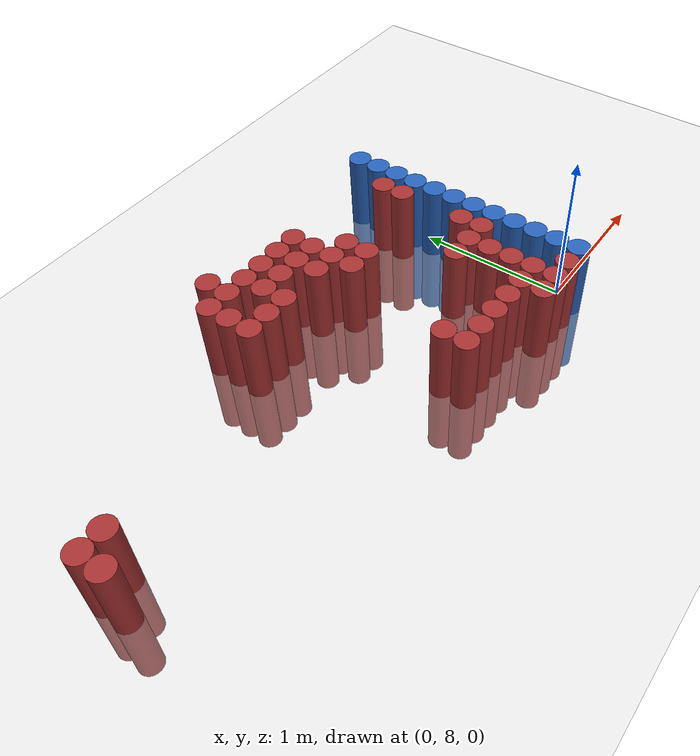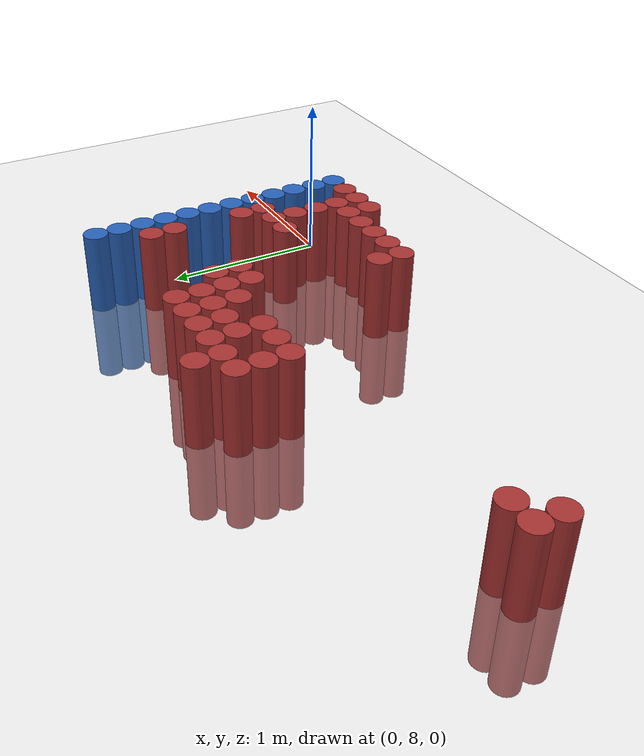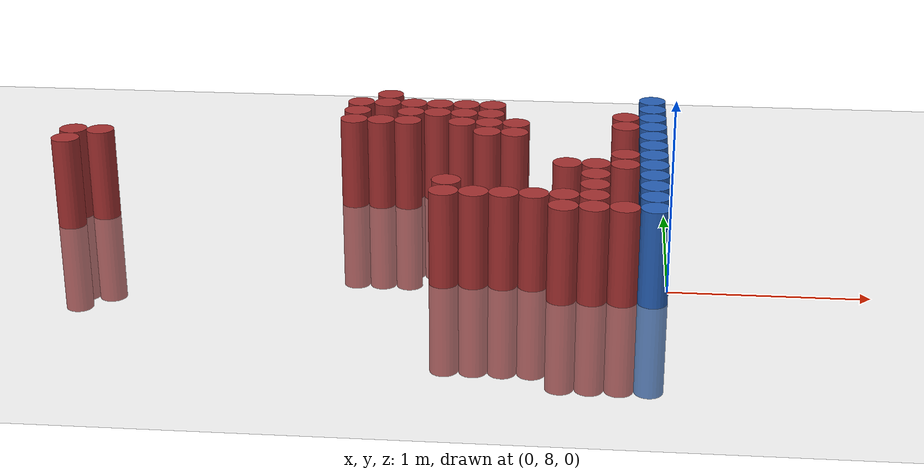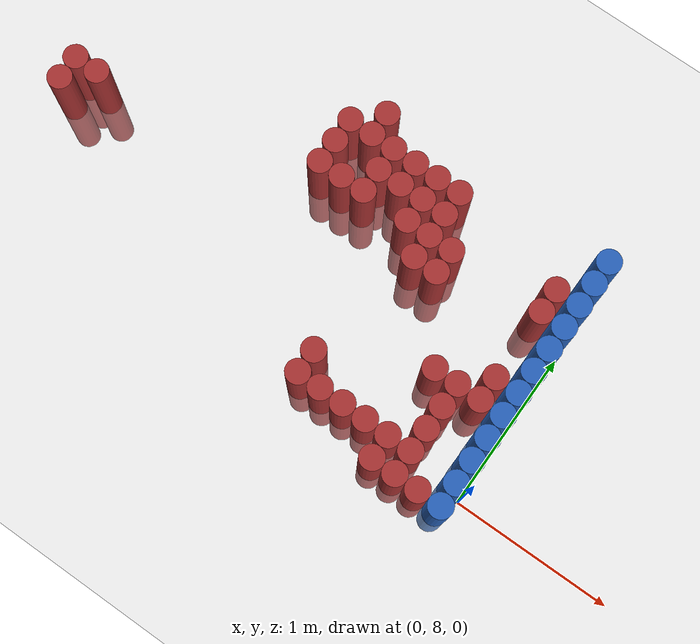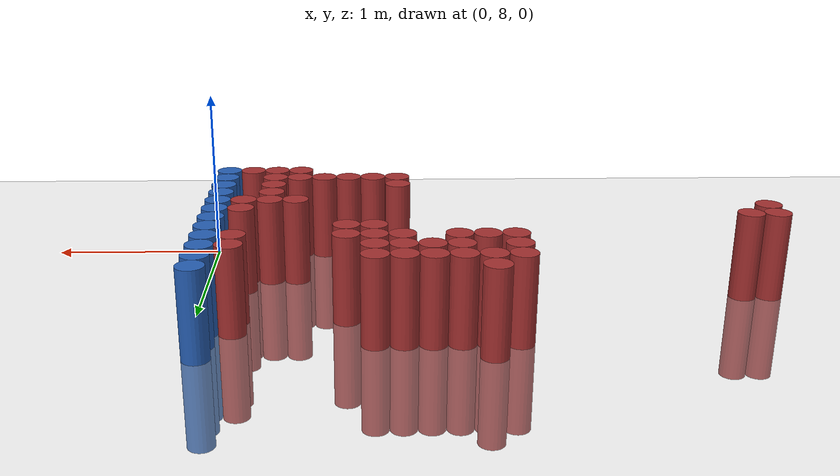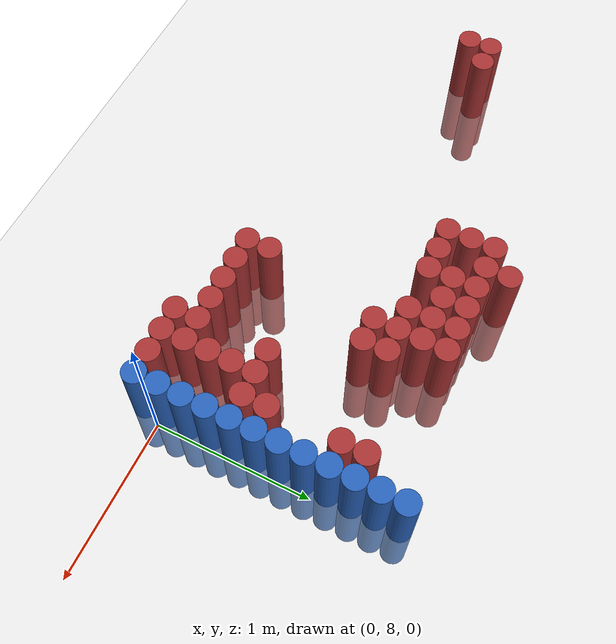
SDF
<sdf version="1.6">
 <world name="default">
  <model name="ground_plane">
   <static>1</static>
   <link name="link">
    <collision name="collision">
     <geometry><plane><normal>0 0 1</normal><size>100 100</size></plane></geometry>
     <surface><friction><ode><mu>100</mu><mu2>50</mu2></ode></friction></surface>
    </collision>
    <visual name="visual">
     <cast_shadows>0</cast_shadows>
     <geometry><plane><normal>0 0 1</normal><size>100 100</size></plane></geometry>
     <material>
      <script><uri>file://media/materials/scripts/gazebo.material</uri><name>Gazebo/Grey</name></script>
     </material>
    </visual>
   </link>
  </model>
  <model name="unit_cylinder_159">
   <static>1</static>
   <pose>-3.225000 8.625000 0.000000 0.000000 0.000000 0.000000</pose>
   <link name="link">
    <inertial>
     <mass>1</mass>
     <inertia><ixx>0.145833</ixx><ixy>0</ixy><ixz>0</ixz><iyy>0.145833</iyy><iyz>0</iyz><izz>0.125</izz></inertia>
    </inertial>
    <collision name="collision">
     <geometry><cylinder><radius>0.075000</radius><length>1</length></cylinder></geometry>
    </collision>
    <visual name="visual">
     <geometry><cylinder><radius>0.075000</radius><length>1</length></cylinder></geometry>
     <material>
      <ambient>0.648000 0.192000 0.192000 1</ambient>
      <diffuse>0.648000 0.192000 0.192000 1</diffuse>
     </material>
     <material>
      <script><name>Gazebo/Grey</name><uri>file://media/materials/scripts/gazebo.material</uri></script>
     </material>
    </visual>
   </link>
  </model>
  <model name="unit_cylinder_160">
   <static>1</static>
   <pose>-3.225000 8.775000 0.000000 0.000000 0.000000 0.000000</pose>
   <link name="link">
    <inertial>
     <mass>1</mass>
     <inertia><ixx>0.145833</ixx><ixy>0</ixy><ixz>0</ixz><iyy>0.145833</iyy><iyz>0</iyz><izz>0.125</izz></inertia>
    </inertial>
    <collision name="collision">
     <geometry><cylinder><radius>0.075000</radius><length>1</length></cylinder></geometry>
    </collision>
    <visual name="visual">
     <geometry><cylinder><radius>0.075000</radius><length>1</length></cylinder></geometry>
     <material>
      <ambient>0.648000 0.192000 0.192000 1</ambient>
      <diffuse>0.648000 0.192000 0.192000 1</diffuse>
     </material>
     <material>
      <script><name>Gazebo/Grey</name><uri>file://media/materials/scripts/gazebo.material</uri></script>
     </material>
    </visual>
   </link>
  </model>
  <model name="unit_cylinder_162">
   <static>1</static>
   <pose>-3.075000 8.775000 0.000000 0.000000 0.000000 0.000000</pose>
   <link name="link">
    <inertial>
     <mass>1</mass>
     <inertia><ixx>0.145833</ixx><ixy>0</ixy><ixz>0</ixz><iyy>0.145833</iyy><iyz>0</iyz><izz>0.125</izz></inertia>
    </inertial>
    <collision name="collision">
     <geometry><cylinder><radius>0.075000</radius><length>1</length></cylinder></geometry>
    </collision>
    <visual name="visual">
     <geometry><cylinder><radius>0.075000</radius><length>1</length></cylinder></geometry>
     <material>
      <ambient>0.648000 0.192000 0.192000 1</ambient>
      <diffuse>0.648000 0.192000 0.192000 1</diffuse>
     </material>
     <material>
      <script><name>Gazebo/Grey</name><uri>file://media/materials/scripts/gazebo.material</uri></script>
     </material>
    </visual>
   </link>
  </model>
  <model name="unit_cylinder_181">
   <static>1</static>
   <pose>-1.725000 9.075000 0.000000 0.000000 0.000000 0.000000</pose>
   <link name="link">
    <inertial>
     <mass>1</mass>
     <inertia><ixx>0.145833</ixx><ixy>0</ixy><ixz>0</ixz><iyy>0.145833</iyy><iyz>0</iyz><izz>0.125</izz></inertia>
    </inertial>
    <collision name="collision">
     <geometry><cylinder><radius>0.075000</radius><length>1</length></cylinder></geometry>
    </collision>
    <visual name="visual">
     <geometry><cylinder><radius>0.075000</radius><length>1</length></cylinder></geometry>
     <material>
      <ambient>0.648000 0.192000 0.192000 1</ambient>
      <diffuse>0.648000 0.192000 0.192000 1</diffuse>
     </material>
     <material>
      <script><name>Gazebo/Grey</name><uri>file://media/materials/scripts/gazebo.material</uri></script>
     </material>
    </visual>
   </link>
  </model>
  <model name="unit_cylinder_182">
   <static>1</static>
   <pose>-1.725000 9.225000 0.000000 0.000000 0.000000 0.000000</pose>
   <link name="link">
    <inertial>
     <mass>1</mass>
     <inertia><ixx>0.145833</ixx><ixy>0</ixy><ixz>0</ixz><iyy>0.145833</iyy><iyz>0</iyz><izz>0.125</izz></inertia>
    </inertial>
    <collision name="collision">
     <geometry><cylinder><radius>0.075000</radius><length>1</length></cylinder></geometry>
    </collision>
    <visual name="visual">
     <geometry><cylinder><radius>0.075000</radius><length>1</length></cylinder></geometry>
     <material>
      <ambient>0.648000 0.192000 0.192000 1</ambient>
      <diffuse>0.648000 0.192000 0.192000 1</diffuse>
     </material>
     <material>
      <script><name>Gazebo/Grey</name><uri>file://media/materials/scripts/gazebo.material</uri></script>
     </material>
    </visual>
   </link>
  </model>
  <model name="unit_cylinder_183">
   <static>1</static>
   <pose>-1.725000 9.375000 0.000000 0.000000 0.000000 0.000000</pose>
   <link name="link">
    <inertial>
     <mass>1</mass>
     <inertia><ixx>0.145833</ixx><ixy>0</ixy><ixz>0</ixz><iyy>0.145833</iyy><iyz>0</iyz><izz>0.125</izz></inertia>
    </inertial>
    <collision name="collision">
     <geometry><cylinder><radius>0.075000</radius><length>1</length></cylinder></geometry>
    </collision>
    <visual name="visual">
     <geometry><cylinder><radius>0.075000</radius><length>1</length></cylinder></geometry>
     <material>
      <ambient>0.648000 0.192000 0.192000 1</ambient>
      <diffuse>0.648000 0.192000 0.192000 1</diffuse>
     </material>
     <material>
      <script><name>Gazebo/Grey</name><uri>file://media/materials/scripts/gazebo.material</uri></script>
     </material>
    </visual>
   </link>
  </model>
  <model name="unit_cylinder_184">
   <static>1</static>
   <pose>-1.575000 9.075000 0.000000 0.000000 0.000000 0.000000</pose>
   <link name="link">
    <inertial>
     <mass>1</mass>
     <inertia><ixx>0.145833</ixx><ixy>0</ixy><ixz>0</ixz><iyy>0.145833</iyy><iyz>0</iyz><izz>0.125</izz></inertia>
    </inertial>
    <collision name="collision">
     <geometry><cylinder><radius>0.075000</radius><length>1</length></cylinder></geometry>
    </collision>
    <visual name="visual">
     <geometry><cylinder><radius>0.075000</radius><length>1</length></cylinder></geometry>
     <material>
      <ambient>0.648000 0.192000 0.192000 1</ambient>
      <diffuse>0.648000 0.192000 0.192000 1</diffuse>
     </material>
     <material>
      <script><name>Gazebo/Grey</name><uri>file://media/materials/scripts/gazebo.material</uri></script>
     </material>
    </visual>
   </link>
  </model>
  <model name="unit_cylinder_185">
   <static>1</static>
   <pose>-1.575000 9.375000 0.000000 0.000000 0.000000 0.000000</pose>
   <link name="link">
    <inertial>
     <mass>1</mass>
     <inertia><ixx>0.145833</ixx><ixy>0</ixy><ixz>0</ixz><iyy>0.145833</iyy><iyz>0</iyz><izz>0.125</izz></inertia>
    </inertial>
    <collision name="collision">
     <geometry><cylinder><radius>0.075000</radius><length>1</length></cylinder></geometry>
    </collision>
    <visual name="visual">
     <geometry><cylinder><radius>0.075000</radius><length>1</length></cylinder></geometry>
     <material>
      <ambient>0.648000 0.192000 0.192000 1</ambient>
      <diffuse>0.648000 0.192000 0.192000 1</diffuse>
     </material>
     <material>
      <script><name>Gazebo/Grey</name><uri>file://media/materials/scripts/gazebo.material</uri></script>
     </material>
    </visual>
   </link>
  </model>
  <model name="unit_cylinder_186">
   <static>1</static>
   <pose>-1.575000 9.525000 0.000000 0.000000 0.000000 0.000000</pose>
   <link name="link">
    <inertial>
     <mass>1</mass>
     <inertia><ixx>0.145833</ixx><ixy>0</ixy><ixz>0</ixz><iyy>0.145833</iyy><iyz>0</iyz><izz>0.125</izz></inertia>
    </inertial>
    <collision name="collision">
     <geometry><cylinder><radius>0.075000</radius><length>1</length></cylinder></geometry>
    </collision>
    <visual name="visual">
     <geometry><cylinder><radius>0.075000</radius><length>1</length></cylinder></geometry>
     <material>
      <ambient>0.648000 0.192000 0.192000 1</ambient>
      <diffuse>0.648000 0.192000 0.192000 1</diffuse>
     </material>
     <material>
      <script><name>Gazebo/Grey</name><uri>file://media/materials/scripts/gazebo.material</uri></script>
     </material>
    </visual>
   </link>
  </model>
  <model name="unit_cylinder_187">
   <static>1</static>
   <pose>-1.425000 9.075000 0.000000 0.000000 0.000000 0.000000</pose>
   <link name="link">
    <inertial>
     <mass>1</mass>
     <inertia><ixx>0.145833</ixx><ixy>0</ixy><ixz>0</ixz><iyy>0.145833</iyy><iyz>0</iyz><izz>0.125</izz></inertia>
    </inertial>
    <collision name="collision">
     <geometry><cylinder><radius>0.075000</radius><length>1</length></cylinder></geometry>
    </collision>
    <visual name="visual">
     <geometry><cylinder><radius>0.075000</radius><length>1</length></cylinder></geometry>
     <material>
      <ambient>0.648000 0.192000 0.192000 1</ambient>
      <diffuse>0.648000 0.192000 0.192000 1</diffuse>
     </material>
     <material>
      <script><name>Gazebo/Grey</name><uri>file://media/materials/scripts/gazebo.material</uri></script>
     </material>
    </visual>
   </link>
  </model>
  <model name="unit_cylinder_188">
   <static>1</static>
   <pose>-1.425000 9.225000 0.000000 0.000000 0.000000 0.000000</pose>
   <link name="link">
    <inertial>
     <mass>1</mass>
     <inertia><ixx>0.145833</ixx><ixy>0</ixy><ixz>0</ixz><iyy>0.145833</iyy><iyz>0</iyz><izz>0.125</izz></inertia>
    </inertial>
    <collision name="collision">
     <geometry><cylinder><radius>0.075000</radius><length>1</length></cylinder></geometry>
    </collision>
    <visual name="visual">
     <geometry><cylinder><radius>0.075000</radius><length>1</length></cylinder></geometry>
     <material>
      <ambient>0.648000 0.192000 0.192000 1</ambient>
      <diffuse>0.648000 0.192000 0.192000 1</diffuse>
     </material>
     <material>
      <script><name>Gazebo/Grey</name><uri>file://media/materials/scripts/gazebo.material</uri></script>
     </material>
    </visual>
   </link>
  </model>
  <model name="unit_cylinder_189">
   <static>1</static>
   <pose>-1.425000 9.375000 0.000000 0.000000 0.000000 0.000000</pose>
   <link name="link">
    <inertial>
     <mass>1</mass>
     <inertia><ixx>0.145833</ixx><ixy>0</ixy><ixz>0</ixz><iyy>0.145833</iyy><iyz>0</iyz><izz>0.125</izz></inertia>
    </inertial>
    <collision name="collision">
     <geometry><cylinder><radius>0.075000</radius><length>1</length></cylinder></geometry>
    </collision>
    <visual name="visual">
     <geometry><cylinder><radius>0.075000</radius><length>1</length></cylinder></geometry>
     <material>
      <ambient>0.648000 0.192000 0.192000 1</ambient>
      <diffuse>0.648000 0.192000 0.192000 1</diffuse>
     </material>
     <material>
      <script><name>Gazebo/Grey</name><uri>file://media/materials/scripts/gazebo.material</uri></script>
     </material>
    </visual>
   </link>
  </model>
  <model name="unit_cylinder_190">
   <static>1</static>
   <pose>-1.275000 9.225000 0.000000 0.000000 0.000000 0.000000</pose>
   <link name="link">
    <inertial>
     <mass>1</mass>
     <inertia><ixx>0.145833</ixx><ixy>0</ixy><ixz>0</ixz><iyy>0.145833</iyy><iyz>0</iyz><izz>0.125</izz></inertia>
    </inertial>
    <collision name="collision">
     <geometry><cylinder><radius>0.075000</radius><length>1</length></cylinder></geometry>
    </collision>
    <visual name="visual">
     <geometry><cylinder><radius>0.075000</radius><length>1</length></cylinder></geometry>
     <material>
      <ambient>0.648000 0.192000 0.192000 1</ambient>
      <diffuse>0.648000 0.192000 0.192000 1</diffuse>
     </material>
     <material>
      <script><name>Gazebo/Grey</name><uri>file://media/materials/scripts/gazebo.material</uri></script>
     </material>
    </visual>
   </link>
  </model>
  <model name="unit_cylinder_191">
   <static>1</static>
   <pose>-1.275000 9.375000 0.000000 0.000000 0.000000 0.000000</pose>
   <link name="link">
    <inertial>
     <mass>1</mass>
     <inertia><ixx>0.145833</ixx><ixy>0</ixy><ixz>0</ixz><iyy>0.145833</iyy><iyz>0</iyz><izz>0.125</izz></inertia>
    </inertial>
    <collision name="collision">
     <geometry><cylinder><radius>0.075000</radius><length>1</length></cylinder></geometry>
    </collision>
    <visual name="visual">
     <geometry><cylinder><radius>0.075000</radius><length>1</length></cylinder></geometry>
     <material>
      <ambient>0.648000 0.192000 0.192000 1</ambient>
      <diffuse>0.648000 0.192000 0.192000 1</diffuse>
     </material>
     <material>
      <script><name>Gazebo/Grey</name><uri>file://media/materials/scripts/gazebo.material</uri></script>
     </material>
    </visual>
   </link>
  </model>
  <model name="unit_cylinder_192">
   <static>1</static>
   <pose>-1.125000 8.025000 0.000000 0.000000 0.000000 0.000000</pose>
   <link name="link">
    <inertial>
     <mass>1</mass>
     <inertia><ixx>0.145833</ixx><ixy>0</ixy><ixz>0</ixz><iyy>0.145833</iyy><iyz>0</iyz><izz>0.125</izz></inertia>
    </inertial>
    <collision name="collision">
     <geometry><cylinder><radius>0.075000</radius><length>1</length></cylinder></geometry>
    </collision>
    <visual name="visual">
     <geometry><cylinder><radius>0.075000</radius><length>1</length></cylinder></geometry>
     <material>
      <ambient>0.648000 0.192000 0.192000 1</ambient>
      <diffuse>0.648000 0.192000 0.192000 1</diffuse>
     </material>
     <material>
      <script><name>Gazebo/Grey</name><uri>file://media/materials/scripts/gazebo.material</uri></script>
     </material>
    </visual>
   </link>
  </model>
  <model name="unit_cylinder_193">
   <static>1</static>
   <pose>-1.125000 8.175000 0.000000 0.000000 0.000000 0.000000</pose>
   <link name="link">
    <inertial>
     <mass>1</mass>
     <inertia><ixx>0.145833</ixx><ixy>0</ixy><ixz>0</ixz><iyy>0.145833</iyy><iyz>0</iyz><izz>0.125</izz></inertia>
    </inertial>
    <collision name="collision">
     <geometry><cylinder><radius>0.075000</radius><length>1</length></cylinder></geometry>
    </collision>
    <visual name="visual">
     <geometry><cylinder><radius>0.075000</radius><length>1</length></cylinder></geometry>
     <material>
      <ambient>0.648000 0.192000 0.192000 1</ambient>
      <diffuse>0.648000 0.192000 0.192000 1</diffuse>
     </material>
     <material>
      <script><name>Gazebo/Grey</name><uri>file://media/materials/scripts/gazebo.material</uri></script>
     </material>
    </visual>
   </link>
  </model>
  <model name="unit_cylinder_194">
   <static>1</static>
   <pose>-1.125000 9.075000 0.000000 0.000000 0.000000 0.000000</pose>
   <link name="link">
    <inertial>
     <mass>1</mass>
     <inertia><ixx>0.145833</ixx><ixy>0</ixy><ixz>0</ixz><iyy>0.145833</iyy><iyz>0</iyz><izz>0.125</izz></inertia>
    </inertial>
    <collision name="collision">
     <geometry><cylinder><radius>0.075000</radius><length>1</length></cylinder></geometry>
    </collision>
    <visual name="visual">
     <geometry><cylinder><radius>0.075000</radius><length>1</length></cylinder></geometry>
     <material>
      <ambient>0.648000 0.192000 0.192000 1</ambient>
      <diffuse>0.648000 0.192000 0.192000 1</diffuse>
     </material>
     <material>
      <script><name>Gazebo/Grey</name><uri>file://media/materials/scripts/gazebo.material</uri></script>
     </material>
    </visual>
   </link>
  </model>
  <model name="unit_cylinder_195">
   <static>1</static>
   <pose>-1.125000 9.225000 0.000000 0.000000 0.000000 0.000000</pose>
   <link name="link">
    <inertial>
     <mass>1</mass>
     <inertia><ixx>0.145833</ixx><ixy>0</ixy><ixz>0</ixz><iyy>0.145833</iyy><iyz>0</iyz><izz>0.125</izz></inertia>
    </inertial>
    <collision name="collision">
     <geometry><cylinder><radius>0.075000</radius><length>1</length></cylinder></geometry>
    </collision>
    <visual name="visual">
     <geometry><cylinder><radius>0.075000</radius><length>1</length></cylinder></geometry>
     <material>
      <ambient>0.648000 0.192000 0.192000 1</ambient>
      <diffuse>0.648000 0.192000 0.192000 1</diffuse>
     </material>
     <material>
      <script><name>Gazebo/Grey</name><uri>file://media/materials/scripts/gazebo.material</uri></script>
     </material>
    </visual>
   </link>
  </model>
  <model name="unit_cylinder_196">
   <static>1</static>
   <pose>-1.125000 9.375000 0.000000 0.000000 0.000000 0.000000</pose>
   <link name="link">
    <inertial>
     <mass>1</mass>
     <inertia><ixx>0.145833</ixx><ixy>0</ixy><ixz>0</ixz><iyy>0.145833</iyy><iyz>0</iyz><izz>0.125</izz></inertia>
    </inertial>
    <collision name="collision">
     <geometry><cylinder><radius>0.075000</radius><length>1</length></cylinder></geometry>
    </collision>
    <visual name="visual">
     <geometry><cylinder><radius>0.075000</radius><length>1</length></cylinder></geometry>
     <material>
      <ambient>0.648000 0.192000 0.192000 1</ambient>
      <diffuse>0.648000 0.192000 0.192000 1</diffuse>
     </material>
     <material>
      <script><name>Gazebo/Grey</name><uri>file://media/materials/scripts/gazebo.material</uri></script>
     </material>
    </visual>
   </link>
  </model>
  <model name="unit_cylinder_198">
   <static>1</static>
   <pose>-0.975000 8.025000 0.000000 0.000000 0.000000 0.000000</pose>
   <link name="link">
    <inertial>
     <mass>1</mass>
     <inertia><ixx>0.145833</ixx><ixy>0</ixy><ixz>0</ixz><iyy>0.145833</iyy><iyz>0</iyz><izz>0.125</izz></inertia>
    </inertial>
    <collision name="collision">
     <geometry><cylinder><radius>0.075000</radius><length>1</length></cylinder></geometry>
    </collision>
    <visual name="visual">
     <geometry><cylinder><radius>0.075000</radius><length>1</length></cylinder></geometry>
     <material>
      <ambient>0.648000 0.192000 0.192000 1</ambient>
      <diffuse>0.648000 0.192000 0.192000 1</diffuse>
     </material>
     <material>
      <script><name>Gazebo/Grey</name><uri>file://media/materials/scripts/gazebo.material</uri></script>
     </material>
    </visual>
   </link>
  </model>
  <model name="unit_cylinder_199">
   <static>1</static>
   <pose>-0.975000 8.925000 0.000000 0.000000 0.000000 0.000000</pose>
   <link name="link">
    <inertial>
     <mass>1</mass>
     <inertia><ixx>0.145833</ixx><ixy>0</ixy><ixz>0</ixz><iyy>0.145833</iyy><iyz>0</iyz><izz>0.125</izz></inertia>
    </inertial>
    <collision name="collision">
     <geometry><cylinder><radius>0.075000</radius><length>1</length></cylinder></geometry>
    </collision>
    <visual name="visual">
     <geometry><cylinder><radius>0.075000</radius><length>1</length></cylinder></geometry>
     <material>
      <ambient>0.648000 0.192000 0.192000 1</ambient>
      <diffuse>0.648000 0.192000 0.192000 1</diffuse>
     </material>
     <material>
      <script><name>Gazebo/Grey</name><uri>file://media/materials/scripts/gazebo.material</uri></script>
     </material>
    </visual>
   </link>
  </model>
  <model name="unit_cylinder_200">
   <static>1</static>
   <pose>-0.975000 9.075000 0.000000 0.000000 0.000000 0.000000</pose>
   <link name="link">
    <inertial>
     <mass>1</mass>
     <inertia><ixx>0.145833</ixx><ixy>0</ixy><ixz>0</ixz><iyy>0.145833</iyy><iyz>0</iyz><izz>0.125</izz></inertia>
    </inertial>
    <collision name="collision">
     <geometry><cylinder><radius>0.075000</radius><length>1</length></cylinder></geometry>
    </collision>
    <visual name="visual">
     <geometry><cylinder><radius>0.075000</radius><length>1</length></cylinder></geometry>
     <material>
      <ambient>0.648000 0.192000 0.192000 1</ambient>
      <diffuse>0.648000 0.192000 0.192000 1</diffuse>
     </material>
     <material>
      <script><name>Gazebo/Grey</name><uri>file://media/materials/scripts/gazebo.material</uri></script>
     </material>
    </visual>
   </link>
  </model>
  <model name="unit_cylinder_201">
   <static>1</static>
   <pose>-0.975000 9.225000 0.000000 0.000000 0.000000 0.000000</pose>
   <link name="link">
    <inertial>
     <mass>1</mass>
     <inertia><ixx>0.145833</ixx><ixy>0</ixy><ixz>0</ixz><iyy>0.145833</iyy><iyz>0</iyz><izz>0.125</izz></inertia>
    </inertial>
    <collision name="collision">
     <geometry><cylinder><radius>0.075000</radius><length>1</length></cylinder></geometry>
    </collision>
    <visual name="visual">
     <geometry><cylinder><radius>0.075000</radius><length>1</length></cylinder></geometry>
     <material>
      <ambient>0.648000 0.192000 0.192000 1</ambient>
      <diffuse>0.648000 0.192000 0.192000 1</diffuse>
     </material>
     <material>
      <script><name>Gazebo/Grey</name><uri>file://media/materials/scripts/gazebo.material</uri></script>
     </material>
    </visual>
   </link>
  </model>
  <model name="unit_cylinder_202">
   <static>1</static>
   <pose>-0.975000 9.375000 0.000000 0.000000 0.000000 0.000000</pose>
   <link name="link">
    <inertial>
     <mass>1</mass>
     <inertia><ixx>0.145833</ixx><ixy>0</ixy><ixz>0</ixz><iyy>0.145833</iyy><iyz>0</iyz><izz>0.125</izz></inertia>
    </inertial>
    <collision name="collision">
     <geometry><cylinder><radius>0.075000</radius><length>1</length></cylinder></geometry>
    </collision>
    <visual name="visual">
     <geometry><cylinder><radius>0.075000</radius><length>1</length></cylinder></geometry>
     <material>
      <ambient>0.648000 0.192000 0.192000 1</ambient>
      <diffuse>0.648000 0.192000 0.192000 1</diffuse>
     </material>
     <material>
      <script><name>Gazebo/Grey</name><uri>file://media/materials/scripts/gazebo.material</uri></script>
     </material>
    </visual>
   </link>
  </model>
  <model name="unit_cylinder_204">
   <static>1</static>
   <pose>-0.825000 8.025000 0.000000 0.000000 0.000000 0.000000</pose>
   <link name="link">
    <inertial>
     <mass>1</mass>
     <inertia><ixx>0.145833</ixx><ixy>0</ixy><ixz>0</ixz><iyy>0.145833</iyy><iyz>0</iyz><izz>0.125</izz></inertia>
    </inertial>
    <collision name="collision">
     <geometry><cylinder><radius>0.075000</radius><length>1</length></cylinder></geometry>
    </collision>
    <visual name="visual">
     <geometry><cylinder><radius>0.075000</radius><length>1</length></cylinder></geometry>
     <material>
      <ambient>0.648000 0.192000 0.192000 1</ambient>
      <diffuse>0.648000 0.192000 0.192000 1</diffuse>
     </material>
     <material>
      <script><name>Gazebo/Grey</name><uri>file://media/materials/scripts/gazebo.material</uri></script>
     </material>
    </visual>
   </link>
  </model>
  <model name="unit_cylinder_205">
   <static>1</static>
   <pose>-0.825000 8.925000 0.000000 0.000000 0.000000 0.000000</pose>
   <link name="link">
    <inertial>
     <mass>1</mass>
     <inertia><ixx>0.145833</ixx><ixy>0</ixy><ixz>0</ixz><iyy>0.145833</iyy><iyz>0</iyz><izz>0.125</izz></inertia>
    </inertial>
    <collision name="collision">
     <geometry><cylinder><radius>0.075000</radius><length>1</length></cylinder></geometry>
    </collision>
    <visual name="visual">
     <geometry><cylinder><radius>0.075000</radius><length>1</length></cylinder></geometry>
     <material>
      <ambient>0.648000 0.192000 0.192000 1</ambient>
      <diffuse>0.648000 0.192000 0.192000 1</diffuse>
     </material>
     <material>
      <script><name>Gazebo/Grey</name><uri>file://media/materials/scripts/gazebo.material</uri></script>
     </material>
    </visual>
   </link>
  </model>
  <model name="unit_cylinder_206">
   <static>1</static>
   <pose>-0.825000 9.075000 0.000000 0.000000 0.000000 0.000000</pose>
   <link name="link">
    <inertial>
     <mass>1</mass>
     <inertia><ixx>0.145833</ixx><ixy>0</ixy><ixz>0</ixz><iyy>0.145833</iyy><iyz>0</iyz><izz>0.125</izz></inertia>
    </inertial>
    <collision name="collision">
     <geometry><cylinder><radius>0.075000</radius><length>1</length></cylinder></geometry>
    </collision>
    <visual name="visual">
     <geometry><cylinder><radius>0.075000</radius><length>1</length></cylinder></geometry>
     <material>
      <ambient>0.648000 0.192000 0.192000 1</ambient>
      <diffuse>0.648000 0.192000 0.192000 1</diffuse>
     </material>
     <material>
      <script><name>Gazebo/Grey</name><uri>file://media/materials/scripts/gazebo.material</uri></script>
     </material>
    </visual>
   </link>
  </model>
  <model name="unit_cylinder_208">
   <static>1</static>
   <pose>-0.675000 8.025000 0.000000 0.000000 0.000000 0.000000</pose>
   <link name="link">
    <inertial>
     <mass>1</mass>
     <inertia><ixx>0.145833</ixx><ixy>0</ixy><ixz>0</ixz><iyy>0.145833</iyy><iyz>0</iyz><izz>0.125</izz></inertia>
    </inertial>
    <collision name="collision">
     <geometry><cylinder><radius>0.075000</radius><length>1</length></cylinder></geometry>
    </collision>
    <visual name="visual">
     <geometry><cylinder><radius>0.075000</radius><length>1</length></cylinder></geometry>
     <material>
      <ambient>0.648000 0.192000 0.192000 1</ambient>
      <diffuse>0.648000 0.192000 0.192000 1</diffuse>
     </material>
     <material>
      <script><name>Gazebo/Grey</name><uri>file://media/materials/scripts/gazebo.material</uri></script>
     </material>
    </visual>
   </link>
  </model>
  <model name="unit_cylinder_211">
   <static>1</static>
   <pose>-0.525000 7.875000 0.000000 0.000000 0.000000 0.000000</pose>
   <link name="link">
    <inertial>
     <mass>1</mass>
     <inertia><ixx>0.145833</ixx><ixy>0</ixy><ixz>0</ixz><iyy>0.145833</iyy><iyz>0</iyz><izz>0.125</izz></inertia>
    </inertial>
    <collision name="collision">
     <geometry><cylinder><radius>0.075000</radius><length>1</length></cylinder></geometry>
    </collision>
    <visual name="visual">
     <geometry><cylinder><radius>0.075000</radius><length>1</length></cylinder></geometry>
     <material>
      <ambient>0.648000 0.192000 0.192000 1</ambient>
      <diffuse>0.648000 0.192000 0.192000 1</diffuse>
     </material>
     <material>
      <script><name>Gazebo/Grey</name><uri>file://media/materials/scripts/gazebo.material</uri></script>
     </material>
    </visual>
   </link>
  </model>
  <model name="unit_cylinder_212">
   <static>1</static>
   <pose>-0.525000 8.025000 0.000000 0.000000 0.000000 0.000000</pose>
   <link name="link">
    <inertial>
     <mass>1</mass>
     <inertia><ixx>0.145833</ixx><ixy>0</ixy><ixz>0</ixz><iyy>0.145833</iyy><iyz>0</iyz><izz>0.125</izz></inertia>
    </inertial>
    <collision name="collision">
     <geometry><cylinder><radius>0.075000</radius><length>1</length></cylinder></geometry>
    </collision>
    <visual name="visual">
     <geometry><cylinder><radius>0.075000</radius><length>1</length></cylinder></geometry>
     <material>
      <ambient>0.648000 0.192000 0.192000 1</ambient>
      <diffuse>0.648000 0.192000 0.192000 1</diffuse>
     </material>
     <material>
      <script><name>Gazebo/Grey</name><uri>file://media/materials/scripts/gazebo.material</uri></script>
     </material>
    </visual>
   </link>
  </model>
  <model name="unit_cylinder_213">
   <static>1</static>
   <pose>-0.525000 8.475000 0.000000 0.000000 0.000000 0.000000</pose>
   <link name="link">
    <inertial>
     <mass>1</mass>
     <inertia><ixx>0.145833</ixx><ixy>0</ixy><ixz>0</ixz><iyy>0.145833</iyy><iyz>0</iyz><izz>0.125</izz></inertia>
    </inertial>
    <collision name="collision">
     <geometry><cylinder><radius>0.075000</radius><length>1</length></cylinder></geometry>
    </collision>
    <visual name="visual">
     <geometry><cylinder><radius>0.075000</radius><length>1</length></cylinder></geometry>
     <material>
      <ambient>0.648000 0.192000 0.192000 1</ambient>
      <diffuse>0.648000 0.192000 0.192000 1</diffuse>
     </material>
     <material>
      <script><name>Gazebo/Grey</name><uri>file://media/materials/scripts/gazebo.material</uri></script>
     </material>
    </visual>
   </link>
  </model>
  <model name="unit_cylinder_218">
   <static>1</static>
   <pose>-0.375000 7.875000 0.000000 0.000000 0.000000 0.000000</pose>
   <link name="link">
    <inertial>
     <mass>1</mass>
     <inertia><ixx>0.145833</ixx><ixy>0</ixy><ixz>0</ixz><iyy>0.145833</iyy><iyz>0</iyz><izz>0.125</izz></inertia>
    </inertial>
    <collision name="collision">
     <geometry><cylinder><radius>0.075000</radius><length>1</length></cylinder></geometry>
    </collision>
    <visual name="visual">
     <geometry><cylinder><radius>0.075000</radius><length>1</length></cylinder></geometry>
     <material>
      <ambient>0.648000 0.192000 0.192000 1</ambient>
      <diffuse>0.648000 0.192000 0.192000 1</diffuse>
     </material>
     <material>
      <script><name>Gazebo/Grey</name><uri>file://media/materials/scripts/gazebo.material</uri></script>
     </material>
    </visual>
   </link>
  </model>
  <model name="unit_cylinder_219">
   <static>1</static>
   <pose>-0.375000 8.025000 0.000000 0.000000 0.000000 0.000000</pose>
   <link name="link">
    <inertial>
     <mass>1</mass>
     <inertia><ixx>0.145833</ixx><ixy>0</ixy><ixz>0</ixz><iyy>0.145833</iyy><iyz>0</iyz><izz>0.125</izz></inertia>
    </inertial>
    <collision name="collision">
     <geometry><cylinder><radius>0.075000</radius><length>1</length></cylinder></geometry>
    </collision>
    <visual name="visual">
     <geometry><cylinder><radius>0.075000</radius><length>1</length></cylinder></geometry>
     <material>
      <ambient>0.648000 0.192000 0.192000 1</ambient>
      <diffuse>0.648000 0.192000 0.192000 1</diffuse>
     </material>
     <material>
      <script><name>Gazebo/Grey</name><uri>file://media/materials/scripts/gazebo.material</uri></script>
     </material>
    </visual>
   </link>
  </model>
  <model name="unit_cylinder_220">
   <static>1</static>
   <pose>-0.375000 8.175000 0.000000 0.000000 0.000000 0.000000</pose>
   <link name="link">
    <inertial>
     <mass>1</mass>
     <inertia><ixx>0.145833</ixx><ixy>0</ixy><ixz>0</ixz><iyy>0.145833</iyy><iyz>0</iyz><izz>0.125</izz></inertia>
    </inertial>
    <collision name="collision">
     <geometry><cylinder><radius>0.075000</radius><length>1</length></cylinder></geometry>
    </collision>
    <visual name="visual">
     <geometry><cylinder><radius>0.075000</radius><length>1</length></cylinder></geometry>
     <material>
      <ambient>0.648000 0.192000 0.192000 1</ambient>
      <diffuse>0.648000 0.192000 0.192000 1</diffuse>
     </material>
     <material>
      <script><name>Gazebo/Grey</name><uri>file://media/materials/scripts/gazebo.material</uri></script>
     </material>
    </visual>
   </link>
  </model>
  <model name="unit_cylinder_221">
   <static>1</static>
   <pose>-0.375000 8.325000 0.000000 0.000000 0.000000 0.000000</pose>
   <link name="link">
    <inertial>
     <mass>1</mass>
     <inertia><ixx>0.145833</ixx><ixy>0</ixy><ixz>0</ixz><iyy>0.145833</iyy><iyz>0</iyz><izz>0.125</izz></inertia>
    </inertial>
    <collision name="collision">
     <geometry><cylinder><radius>0.075000</radius><length>1</length></cylinder></geometry>
    </collision>
    <visual name="visual">
     <geometry><cylinder><radius>0.075000</radius><length>1</length></cylinder></geometry>
     <material>
      <ambient>0.648000 0.192000 0.192000 1</ambient>
      <diffuse>0.648000 0.192000 0.192000 1</diffuse>
     </material>
     <material>
      <script><name>Gazebo/Grey</name><uri>file://media/materials/scripts/gazebo.material</uri></script>
     </material>
    </visual>
   </link>
  </model>
  <model name="unit_cylinder_222">
   <static>1</static>
   <pose>-0.375000 8.475000 0.000000 0.000000 0.000000 0.000000</pose>
   <link name="link">
    <inertial>
     <mass>1</mass>
     <inertia><ixx>0.145833</ixx><ixy>0</ixy><ixz>0</ixz><iyy>0.145833</iyy><iyz>0</iyz><izz>0.125</izz></inertia>
    </inertial>
    <collision name="collision">
     <geometry><cylinder><radius>0.075000</radius><length>1</length></cylinder></geometry>
    </collision>
    <visual name="visual">
     <geometry><cylinder><radius>0.075000</radius><length>1</length></cylinder></geometry>
     <material>
      <ambient>0.648000 0.192000 0.192000 1</ambient>
      <diffuse>0.648000 0.192000 0.192000 1</diffuse>
     </material>
     <material>
      <script><name>Gazebo/Grey</name><uri>file://media/materials/scripts/gazebo.material</uri></script>
     </material>
    </visual>
   </link>
  </model>
  <model name="unit_cylinder_230">
   <static>1</static>
   <pose>-0.225000 7.875000 0.000000 0.000000 0.000000 0.000000</pose>
   <link name="link">
    <inertial>
     <mass>1</mass>
     <inertia><ixx>0.145833</ixx><ixy>0</ixy><ixz>0</ixz><iyy>0.145833</iyy><iyz>0</iyz><izz>0.125</izz></inertia>
    </inertial>
    <collision name="collision">
     <geometry><cylinder><radius>0.075000</radius><length>1</length></cylinder></geometry>
    </collision>
    <visual name="visual">
     <geometry><cylinder><radius>0.075000</radius><length>1</length></cylinder></geometry>
     <material>
      <ambient>0.648000 0.192000 0.192000 1</ambient>
      <diffuse>0.648000 0.192000 0.192000 1</diffuse>
     </material>
     <material>
      <script><name>Gazebo/Grey</name><uri>file://media/materials/scripts/gazebo.material</uri></script>
     </material>
    </visual>
   </link>
  </model>
  <model name="unit_cylinder_231">
   <static>1</static>
   <pose>-0.225000 8.475000 0.000000 0.000000 0.000000 0.000000</pose>
   <link name="link">
    <inertial>
     <mass>1</mass>
     <inertia><ixx>0.145833</ixx><ixy>0</ixy><ixz>0</ixz><iyy>0.145833</iyy><iyz>0</iyz><izz>0.125</izz></inertia>
    </inertial>
    <collision name="collision">
     <geometry><cylinder><radius>0.075000</radius><length>1</length></cylinder></geometry>
    </collision>
    <visual name="visual">
     <geometry><cylinder><radius>0.075000</radius><length>1</length></cylinder></geometry>
     <material>
      <ambient>0.648000 0.192000 0.192000 1</ambient>
      <diffuse>0.648000 0.192000 0.192000 1</diffuse>
     </material>
     <material>
      <script><name>Gazebo/Grey</name><uri>file://media/materials/scripts/gazebo.material</uri></script>
     </material>
    </visual>
   </link>
  </model>
  <model name="unit_cylinder_232">
   <static>1</static>
   <pose>-0.225000 8.625000 0.000000 0.000000 0.000000 0.000000</pose>
   <link name="link">
    <inertial>
     <mass>1</mass>
     <inertia><ixx>0.145833</ixx><ixy>0</ixy><ixz>0</ixz><iyy>0.145833</iyy><iyz>0</iyz><izz>0.125</izz></inertia>
    </inertial>
    <collision name="collision">
     <geometry><cylinder><radius>0.075000</radius><length>1</length></cylinder></geometry>
    </collision>
    <visual name="visual">
     <geometry><cylinder><radius>0.075000</radius><length>1</length></cylinder></geometry>
     <material>
      <ambient>0.648000 0.192000 0.192000 1</ambient>
      <diffuse>0.648000 0.192000 0.192000 1</diffuse>
     </material>
     <material>
      <script><name>Gazebo/Grey</name><uri>file://media/materials/scripts/gazebo.material</uri></script>
     </material>
    </visual>
   </link>
  </model>
  <model name="unit_cylinder_233">
   <static>1</static>
   <pose>-0.225000 9.075000 0.000000 0.000000 0.000000 0.000000</pose>
   <link name="link">
    <inertial>
     <mass>1</mass>
     <inertia><ixx>0.145833</ixx><ixy>0</ixy><ixz>0</ixz><iyy>0.145833</iyy><iyz>0</iyz><izz>0.125</izz></inertia>
    </inertial>
    <collision name="collision">
     <geometry><cylinder><radius>0.075000</radius><length>1</length></cylinder></geometry>
    </collision>
    <visual name="visual">
     <geometry><cylinder><radius>0.075000</radius><length>1</length></cylinder></geometry>
     <material>
      <ambient>0.648000 0.192000 0.192000 1</ambient>
      <diffuse>0.648000 0.192000 0.192000 1</diffuse>
     </material>
     <material>
      <script><name>Gazebo/Grey</name><uri>file://media/materials/scripts/gazebo.material</uri></script>
     </material>
    </visual>
   </link>
  </model>
  <model name="unit_cylinder_234">
   <static>1</static>
   <pose>-0.225000 9.225000 0.000000 0.000000 0.000000 0.000000</pose>
   <link name="link">
    <inertial>
     <mass>1</mass>
     <inertia><ixx>0.145833</ixx><ixy>0</ixy><ixz>0</ixz><iyy>0.145833</iyy><iyz>0</iyz><izz>0.125</izz></inertia>
    </inertial>
    <collision name="collision">
     <geometry><cylinder><radius>0.075000</radius><length>1</length></cylinder></geometry>
    </collision>
    <visual name="visual">
     <geometry><cylinder><radius>0.075000</radius><length>1</length></cylinder></geometry>
     <material>
      <ambient>0.648000 0.192000 0.192000 1</ambient>
      <diffuse>0.648000 0.192000 0.192000 1</diffuse>
     </material>
     <material>
      <script><name>Gazebo/Grey</name><uri>file://media/materials/scripts/gazebo.material</uri></script>
     </material>
    </visual>
   </link>
  </model>
  <model name="unit_cylinder_253">
   <static>1</static>
   <pose>-0.075000 7.875000 0.000000 0.000000 0.000000 0.000000</pose>
   <link name="link">
    <inertial>
     <mass>1</mass>
     <inertia><ixx>0.145833</ixx><ixy>0</ixy><ixz>0</ixz><iyy>0.145833</iyy><iyz>0</iyz><izz>0.125</izz></inertia>
    </inertial>
    <collision name="collision">
     <geometry><cylinder><radius>0.075000</radius><length>1</length></cylinder></geometry>
    </collision>
    <visual name="visual">
     <geometry><cylinder><radius>0.075000</radius><length>1</length></cylinder></geometry>
     <material>
      <ambient>0.152000 0.379000 0.720000 1</ambient>
      <diffuse>0.152000 0.379000 0.720000 1</diffuse>
     </material>
     <material>
      <script><name>Gazebo/Grey</name><uri>file://media/materials/scripts/gazebo.material</uri></script>
     </material>
    </visual>
   </link>
  </model>
  <model name="unit_cylinder_254">
   <static>1</static>
   <pose>-0.075000 8.025000 0.000000 0.000000 0.000000 0.000000</pose>
   <link name="link">
    <inertial>
     <mass>1</mass>
     <inertia><ixx>0.145833</ixx><ixy>0</ixy><ixz>0</ixz><iyy>0.145833</iyy><iyz>0</iyz><izz>0.125</izz></inertia>
    </inertial>
    <collision name="collision">
     <geometry><cylinder><radius>0.075000</radius><length>1</length></cylinder></geometry>
    </collision>
    <visual name="visual">
     <geometry><cylinder><radius>0.075000</radius><length>1</length></cylinder></geometry>
     <material>
      <ambient>0.152000 0.379000 0.720000 1</ambient>
      <diffuse>0.152000 0.379000 0.720000 1</diffuse>
     </material>
     <material>
      <script><name>Gazebo/Grey</name><uri>file://media/materials/scripts/gazebo.material</uri></script>
     </material>
    </visual>
   </link>
  </model>
  <model name="unit_cylinder_255">
   <static>1</static>
   <pose>-0.075000 8.175000 0.000000 0.000000 0.000000 0.000000</pose>
   <link name="link">
    <inertial>
     <mass>1</mass>
     <inertia><ixx>0.145833</ixx><ixy>0</ixy><ixz>0</ixz><iyy>0.145833</iyy><iyz>0</iyz><izz>0.125</izz></inertia>
    </inertial>
    <collision name="collision">
     <geometry><cylinder><radius>0.075000</radius><length>1</length></cylinder></geometry>
    </collision>
    <visual name="visual">
     <geometry><cylinder><radius>0.075000</radius><length>1</length></cylinder></geometry>
     <material>
      <ambient>0.152000 0.379000 0.720000 1</ambient>
      <diffuse>0.152000 0.379000 0.720000 1</diffuse>
     </material>
     <material>
      <script><name>Gazebo/Grey</name><uri>file://media/materials/scripts/gazebo.material</uri></script>
     </material>
    </visual>
   </link>
  </model>
  <model name="unit_cylinder_256">
   <static>1</static>
   <pose>-0.075000 8.325000 0.000000 0.000000 0.000000 0.000000</pose>
   <link name="link">
    <inertial>
     <mass>1</mass>
     <inertia><ixx>0.145833</ixx><ixy>0</ixy><ixz>0</ixz><iyy>0.145833</iyy><iyz>0</iyz><izz>0.125</izz></inertia>
    </inertial>
    <collision name="collision">
     <geometry><cylinder><radius>0.075000</radius><length>1</length></cylinder></geometry>
    </collision>
    <visual name="visual">
     <geometry><cylinder><radius>0.075000</radius><length>1</length></cylinder></geometry>
     <material>
      <ambient>0.152000 0.379000 0.720000 1</ambient>
      <diffuse>0.152000 0.379000 0.720000 1</diffuse>
     </material>
     <material>
      <script><name>Gazebo/Grey</name><uri>file://media/materials/scripts/gazebo.material</uri></script>
     </material>
    </visual>
   </link>
  </model>
  <model name="unit_cylinder_257">
   <static>1</static>
   <pose>-0.075000 8.475000 0.000000 0.000000 0.000000 0.000000</pose>
   <link name="link">
    <inertial>
     <mass>1</mass>
     <inertia><ixx>0.145833</ixx><ixy>0</ixy><ixz>0</ixz><iyy>0.145833</iyy><iyz>0</iyz><izz>0.125</izz></inertia>
    </inertial>
    <collision name="collision">
     <geometry><cylinder><radius>0.075000</radius><length>1</length></cylinder></geometry>
    </collision>
    <visual name="visual">
     <geometry><cylinder><radius>0.075000</radius><length>1</length></cylinder></geometry>
     <material>
      <ambient>0.152000 0.379000 0.720000 1</ambient>
      <diffuse>0.152000 0.379000 0.720000 1</diffuse>
     </material>
     <material>
      <script><name>Gazebo/Grey</name><uri>file://media/materials/scripts/gazebo.material</uri></script>
     </material>
    </visual>
   </link>
  </model>
  <model name="unit_cylinder_258">
   <static>1</static>
   <pose>-0.075000 8.625000 0.000000 0.000000 0.000000 0.000000</pose>
   <link name="link">
    <inertial>
     <mass>1</mass>
     <inertia><ixx>0.145833</ixx><ixy>0</ixy><ixz>0</ixz><iyy>0.145833</iyy><iyz>0</iyz><izz>0.125</izz></inertia>
    </inertial>
    <collision name="collision">
     <geometry><cylinder><radius>0.075000</radius><length>1</length></cylinder></geometry>
    </collision>
    <visual name="visual">
     <geometry><cylinder><radius>0.075000</radius><length>1</length></cylinder></geometry>
     <material>
      <ambient>0.152000 0.379000 0.720000 1</ambient>
      <diffuse>0.152000 0.379000 0.720000 1</diffuse>
     </material>
     <material>
      <script><name>Gazebo/Grey</name><uri>file://media/materials/scripts/gazebo.material</uri></script>
     </material>
    </visual>
   </link>
  </model>
  <model name="unit_cylinder_259">
   <static>1</static>
   <pose>-0.075000 8.775000 0.000000 0.000000 0.000000 0.000000</pose>
   <link name="link">
    <inertial>
     <mass>1</mass>
     <inertia><ixx>0.145833</ixx><ixy>0</ixy><ixz>0</ixz><iyy>0.145833</iyy><iyz>0</iyz><izz>0.125</izz></inertia>
    </inertial>
    <collision name="collision">
     <geometry><cylinder><radius>0.075000</radius><length>1</length></cylinder></geometry>
    </collision>
    <visual name="visual">
     <geometry><cylinder><radius>0.075000</radius><length>1</length></cylinder></geometry>
     <material>
      <ambient>0.152000 0.379000 0.720000 1</ambient>
      <diffuse>0.152000 0.379000 0.720000 1</diffuse>
     </material>
     <material>
      <script><name>Gazebo/Grey</name><uri>file://media/materials/scripts/gazebo.material</uri></script>
     </material>
    </visual>
   </link>
  </model>
  <model name="unit_cylinder_260">
   <static>1</static>
   <pose>-0.075000 8.925000 0.000000 0.000000 0.000000 0.000000</pose>
   <link name="link">
    <inertial>
     <mass>1</mass>
     <inertia><ixx>0.145833</ixx><ixy>0</ixy><ixz>0</ixz><iyy>0.145833</iyy><iyz>0</iyz><izz>0.125</izz></inertia>
    </inertial>
    <collision name="collision">
     <geometry><cylinder><radius>0.075000</radius><length>1</length></cylinder></geometry>
    </collision>
    <visual name="visual">
     <geometry><cylinder><radius>0.075000</radius><length>1</length></cylinder></geometry>
     <material>
      <ambient>0.152000 0.379000 0.720000 1</ambient>
      <diffuse>0.152000 0.379000 0.720000 1</diffuse>
     </material>
     <material>
      <script><name>Gazebo/Grey</name><uri>file://media/materials/scripts/gazebo.material</uri></script>
     </material>
    </visual>
   </link>
  </model>
  <model name="unit_cylinder_261">
   <static>1</static>
   <pose>-0.075000 9.075000 0.000000 0.000000 0.000000 0.000000</pose>
   <link name="link">
    <inertial>
     <mass>1</mass>
     <inertia><ixx>0.145833</ixx><ixy>0</ixy><ixz>0</ixz><iyy>0.145833</iyy><iyz>0</iyz><izz>0.125</izz></inertia>
    </inertial>
    <collision name="collision">
     <geometry><cylinder><radius>0.075000</radius><length>1</length></cylinder></geometry>
    </collision>
    <visual name="visual">
     <geometry><cylinder><radius>0.075000</radius><length>1</length></cylinder></geometry>
     <material>
      <ambient>0.152000 0.379000 0.720000 1</ambient>
      <diffuse>0.152000 0.379000 0.720000 1</diffuse>
     </material>
     <material>
      <script><name>Gazebo/Grey</name><uri>file://media/materials/scripts/gazebo.material</uri></script>
     </material>
    </visual>
   </link>
  </model>
  <model name="unit_cylinder_262">
   <static>1</static>
   <pose>-0.075000 9.225000 0.000000 0.000000 0.000000 0.000000</pose>
   <link name="link">
    <inertial>
     <mass>1</mass>
     <inertia><ixx>0.145833</ixx><ixy>0</ixy><ixz>0</ixz><iyy>0.145833</iyy><iyz>0</iyz><izz>0.125</izz></inertia>
    </inertial>
    <collision name="collision">
     <geometry><cylinder><radius>0.075000</radius><length>1</length></cylinder></geometry>
    </collision>
    <visual name="visual">
     <geometry><cylinder><radius>0.075000</radius><length>1</length></cylinder></geometry>
     <material>
      <ambient>0.152000 0.379000 0.720000 1</ambient>
      <diffuse>0.152000 0.379000 0.720000 1</diffuse>
     </material>
     <material>
      <script><name>Gazebo/Grey</name><uri>file://media/materials/scripts/gazebo.material</uri></script>
     </material>
    </visual>
   </link>
  </model>
  <model name="unit_cylinder_263">
   <static>1</static>
   <pose>-0.075000 9.375000 0.000000 0.000000 0.000000 0.000000</pose>
   <link name="link">
    <inertial>
     <mass>1</mass>
     <inertia><ixx>0.145833</ixx><ixy>0</ixy><ixz>0</ixz><iyy>0.145833</iyy><iyz>0</iyz><izz>0.125</izz></inertia>
    </inertial>
    <collision name="collision">
     <geometry><cylinder><radius>0.075000</radius><length>1</length></cylinder></geometry>
    </collision>
    <visual name="visual">
     <geometry><cylinder><radius>0.075000</radius><length>1</length></cylinder></geometry>
     <material>
      <ambient>0.152000 0.379000 0.720000 1</ambient>
      <diffuse>0.152000 0.379000 0.720000 1</diffuse>
     </material>
     <material>
      <script><name>Gazebo/Grey</name><uri>file://media/materials/scripts/gazebo.material</uri></script>
     </material>
    </visual>
   </link>
  </model>
  <model name="unit_cylinder_264">
   <static>1</static>
   <pose>-0.075000 9.525000 0.000000 0.000000 0.000000 0.000000</pose>
   <link name="link">
    <inertial>
     <mass>1</mass>
     <inertia><ixx>0.145833</ixx><ixy>0</ixy><ixz>0</ixz><iyy>0.145833</iyy><iyz>0</iyz><izz>0.125</izz></inertia>
    </inertial>
    <collision name="collision">
     <geometry><cylinder><radius>0.075000</radius><length>1</length></cylinder></geometry>
    </collision>
    <visual name="visual">
     <geometry><cylinder><radius>0.075000</radius><length>1</length></cylinder></geometry>
     <material>
      <ambient>0.152000 0.379000 0.720000 1</ambient>
      <diffuse>0.152000 0.379000 0.720000 1</diffuse>
     </material>
     <material>
      <script><name>Gazebo/Grey</name><uri>file://media/materials/scripts/gazebo.material</uri></script>
     </material>
    </visual>
   </link>
  </model>
 </world>
</sdf>
